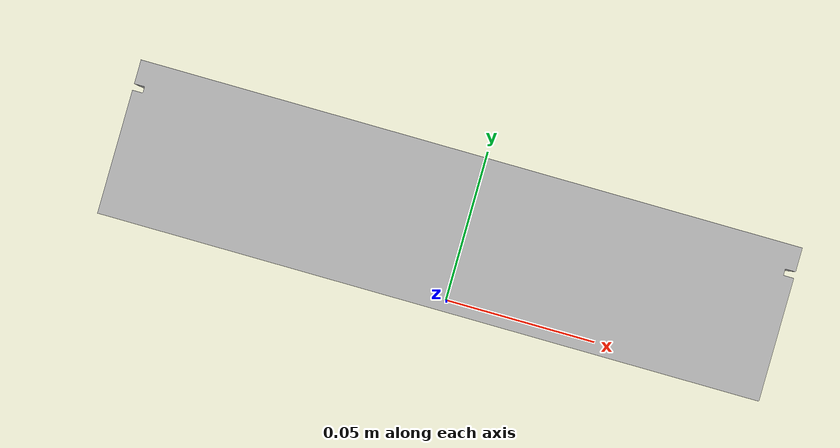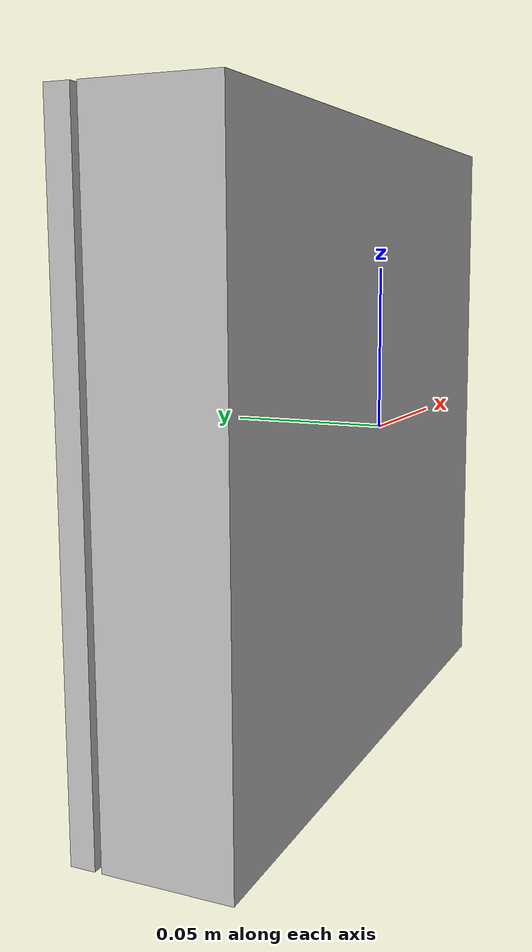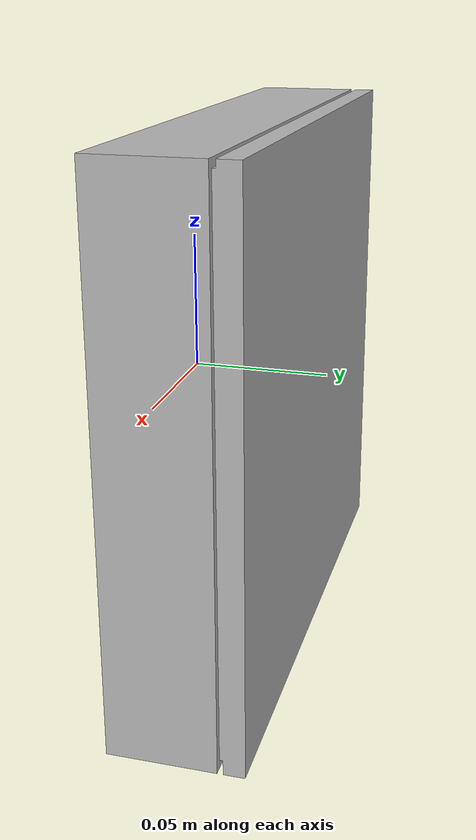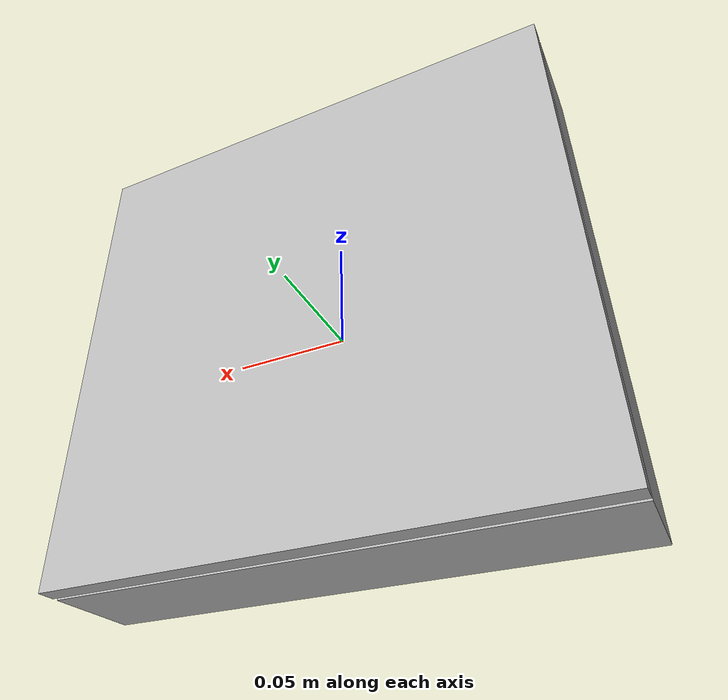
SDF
<?xml version="1.0" ?>
<sdf version="1.4">
  <model name="shelf1_box1_7">
    <link name="body">
      <pose>0 0 0 0 0 0</pose>
      <inertial>
        <pose>  -0.005000   0.022604  -0.006000 0 0 0</pose>
        <mass>0.5</mass>
        <inertia>
          <ixx>0.01</ixx>
          <ixy>0</ixy>
          <ixz>0</ixz>
          <iyy>0.01</iyy>
          <iyz>0</iyz>
          <izz>0.01</izz>
        </inertia>
      </inertial>
      <collision name="collision">
        <geometry>
          <mesh>
            <uri>model://bookshelf/shelf1_items/box1_7/box1_7.dae</uri>
          </mesh>
        </geometry>
      </collision>
      <visual name="visual">
        <geometry>
          <mesh>
            <uri>model://bookshelf/shelf1_items/box1_7/box1_7.dae</uri>
          </mesh>
        </geometry>
      </visual>
    </link>
  </model>
</sdf>
